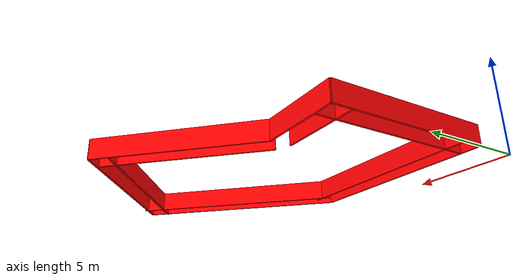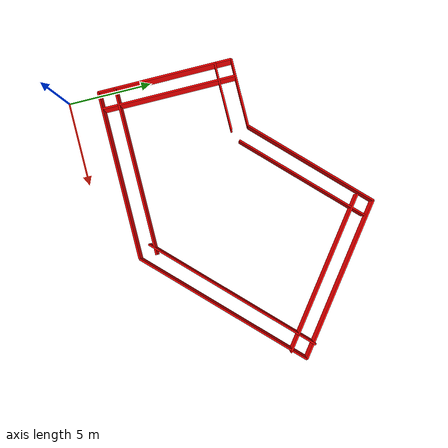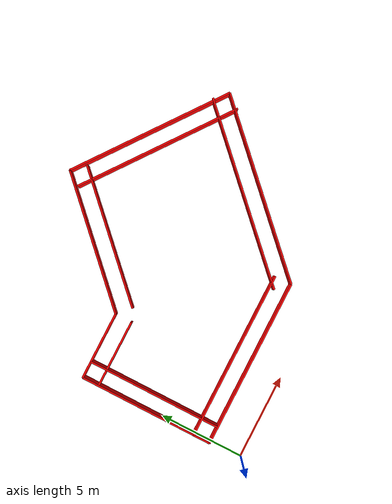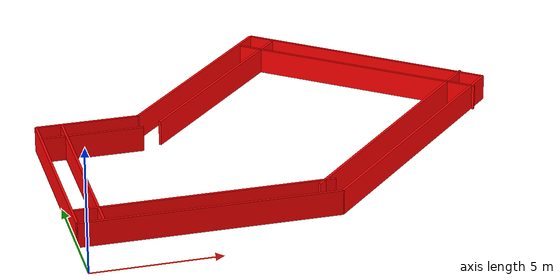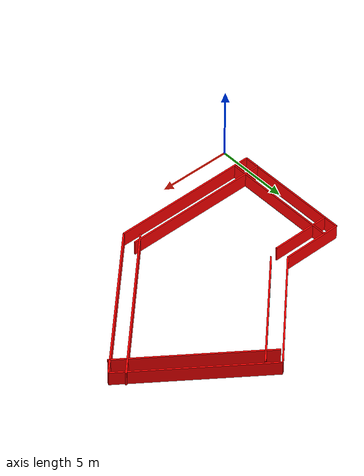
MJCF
<mujoco>
<worldbody>
<body pos='5.0 2.0 0.5' euler='0 0 0.0'><geom type='box' size='5.0 0.05 0.5' rgba='1 0 0 1'/></body><body pos='14.0 6.0 0.5' euler='0 0 45.0'><geom type='box' size='5.656854249492381 0.05 0.5' rgba='1 0 0 1'/></body><body pos='14.0 13.0 0.5' euler='0 0 143.13010235415598'><geom type='box' size='5.0 0.05 0.5' rgba='1 0 0 1'/></body><body pos='7.0 13.0 0.5' euler='0 0 -135.0'><geom type='box' size='4.242640687119285 0.05 0.5' rgba='1 0 0 1'/></body><body pos='2.0 10.0 0.5' euler='0 0 180.0'><geom type='box' size='2.0 0.05 0.5' rgba='1 0 0 1'/></body><body pos='0.0 6.0 0.5' euler='0 0 -90.0'><geom type='box' size='4.0 0.05 0.5' rgba='1 0 0 1'/></body>
<body pos='5.0 3.0 0.5' euler='0 0 0.0'><geom type='box' size='5.0 0.05 0.5' rgba='1 0 0 1'/></body><body pos='13.292893218813452 6.707106781186548 0.5' euler='0 0 45.0'><geom type='box' size='5.656854249492381 0.05 0.5' rgba='1 0 0 1'/></body><body pos='13.4 12.2 0.5' euler='0 0 143.13010235415598'><geom type='box' size='5.0 0.05 0.5' rgba='1 0 0 1'/></body><body pos='7.707106781186548 12.292893218813452 0.5' euler='0 0 -135.0'><geom type='box' size='4.242640687119285 0.05 0.5' rgba='1 0 0 1'/></body><body pos='1.9999999999999998 9.0 0.5' euler='0 0 180.0'><geom type='box' size='2.0 0.05 0.5' rgba='1 0 0 1'/></body><body pos='1.0 6.0 0.5' euler='0 0 -90.0'><geom type='box' size='4.0 0.05 0.5' rgba='1 0 0 1'/></body>
</worldbody>
</mujoco>
